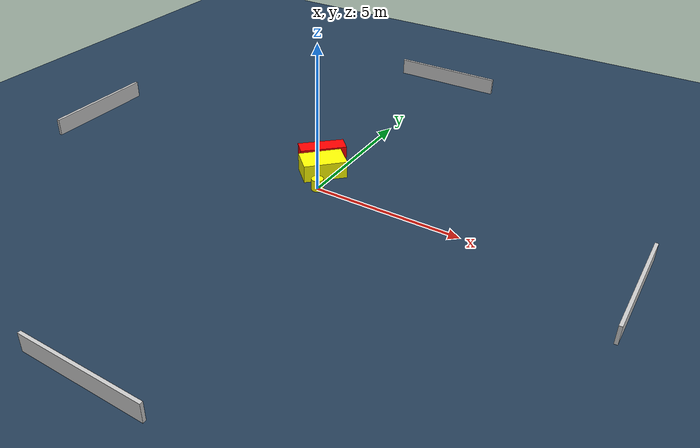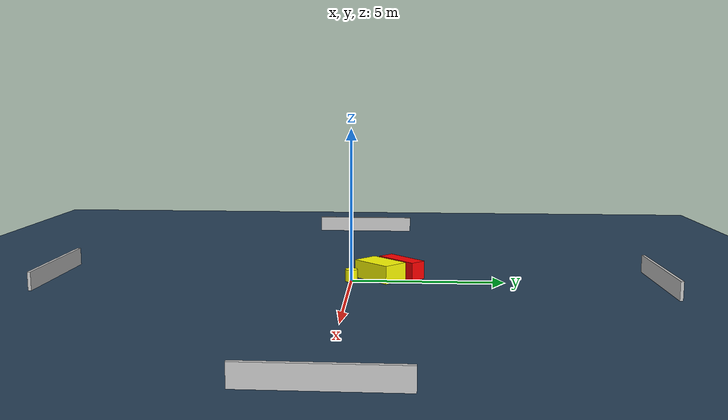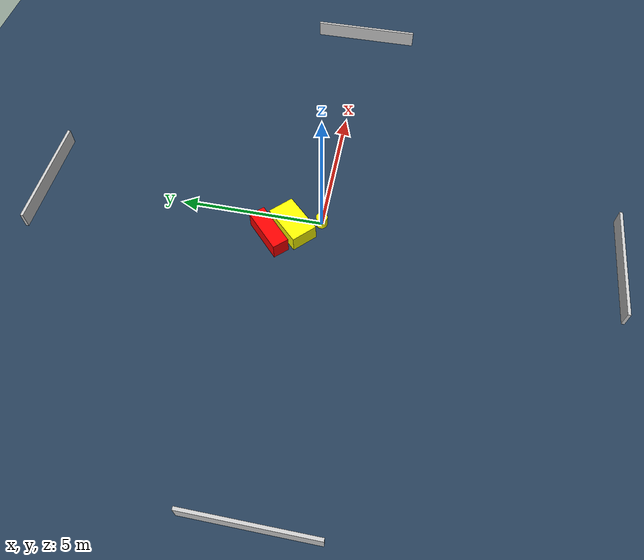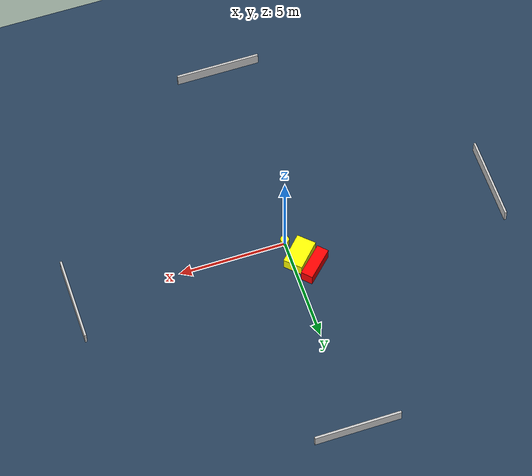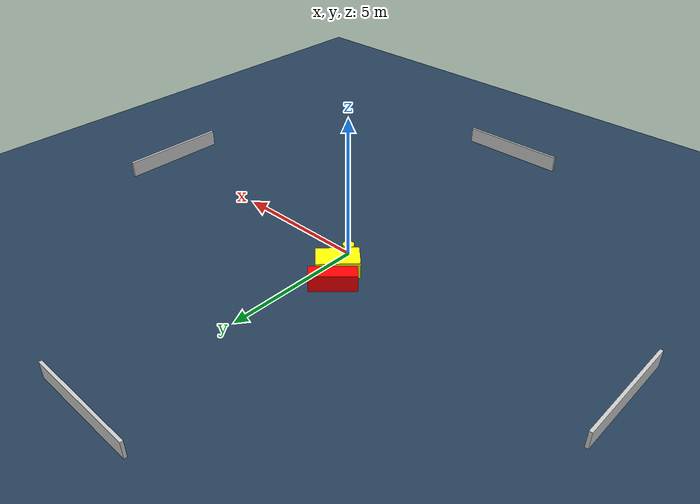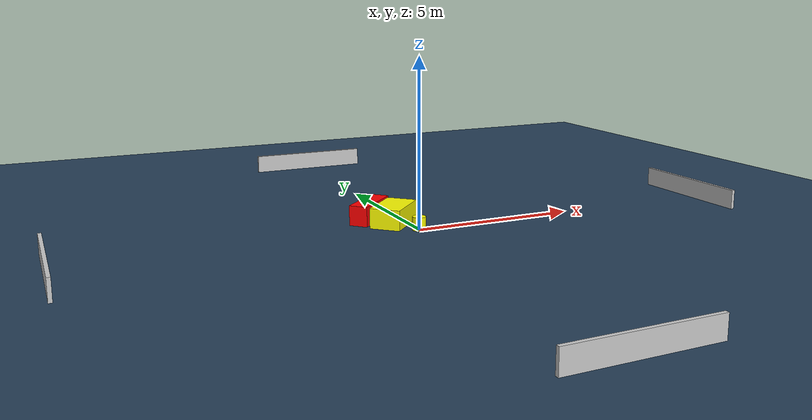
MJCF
<?xml version="1.0" ?>
<mujoco model="generated_environment">
  <option timestep="0.01" integrator="RK4" cone="elliptic"/>
  <default>
    <geom density="1"/>
  </default>
  <asset>
    <texture builtin="gradient" height="3072" name="skybox" rgb1="0.3 0.5 0.7" rgb2="0 0 0" type="skybox" width="512"/>
    <texture builtin="checker" height="300" name="groundplane" rgb1="0.2 0.3 0.4" rgb2="0.1 0.2 0.3" type="2d" width="300"/>
    <material name="groundplane" reflectance="0.2" texrepeat="5 5" texture="groundplane"/>
  </asset>
  <worldbody>
    <light dir="0 0 -1" directional="true" pos="0 0 1.5"/>
    <geom condim="3" friction="0.5 0.005 0.001" material="groundplane" name="floor" pos="0 0 0" size="0 0 0.05" type="plane"/>
    <body name="walls">
      <geom name="wall_1" condim="4" pos="-10.0 0.0 0.3" rgba="0.800000011920929 0.800000011920929 0.800000011920929 1.0" size="0.05 2.0 0.3" type="box"/>
      <geom name="wall_2" condim="4" pos="10.0 0.0 0.3" rgba="0.800000011920929 0.800000011920929 0.800000011920929 1.0" size="0.05 2.0 0.3" type="box"/>
      <geom name="wall_3" condim="4" pos="0.0 -10.0 0.3" rgba="0.800000011920929 0.800000011920929 0.800000011920929 1.0" size="2.0 0.05 0.3" type="box"/>
      <geom name="wall_4" condim="4" pos="0.0 10.0 0.3" rgba="0.800000011920929 0.800000011920929 0.800000011920929 1.0" size="2.0 0.05 0.3" type="box"/>
    </body>
    <body name="robot">
      <joint name="joint_x" type="slide" pos="0 0 0" axis="1 0 0"/>
      <joint name="joint_y" type="slide" pos="0 0 0" axis="0 1 0"/>
      <geom name="robot" type="cylinder" pos="0.0 0.0 0.2" size="0.2 0.2 0.0" mass="5.0" friction="1.0 0.005 0.0001" condim="4" rgba="1.0 1.0 0.0 1.0"/>
    </body>
    <body name="obstacle_1_movable">
      <geom name="obstacle_1_movable" condim="4" pos="-0.3979390228569011 0.9377250121754501 0.3" euler="0 0 225.9304054759934" friction="0.0 0.005 0.001" rgba="1.0 1.0 0.0 1.0" size="0.7361767907949286 0.45736922599858026 0.3" type="box" mass="0.1"/>
      <joint type="free"/>
    </body>
    <body name="obstacle_2_static">
      <geom name="obstacle_2_static" condim="4" pos="-0.8777311506770114 1.6534379762540432 0.3" euler="0 0 313.72302500033857" friction="0.0 0.005 0.001" rgba="1.0 0.0 0.0 1.0" size="0.2817483233035518 0.7982536058701533 0.3" type="box"/>
    </body>
  </worldbody>
  <actuator>
    <motor name="actuator_x" joint="joint_x" gear="1" ctrlrange="-1 1"/>
    <motor name="actuator_y" joint="joint_y" gear="1" ctrlrange="-1 1"/>
  </actuator>
</mujoco>
